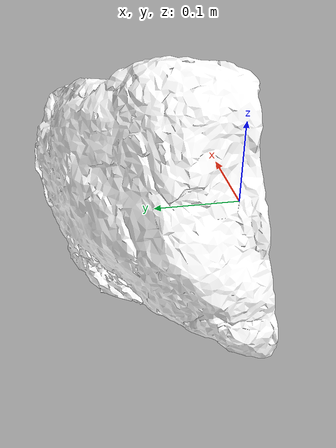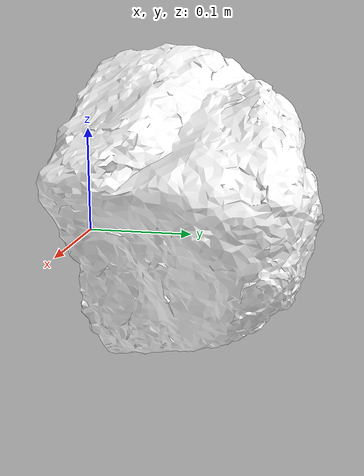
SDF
<?xml version="1.0" ?>
<sdf version="1.9">
  <model name="rock_3">
    <static>true</static>
    <link name="rock_link">
      <!-- Visual -->
      <visual name="visual">
        <geometry>
          <mesh>
            <uri>model://rock_3/meshes/rock_3.obj</uri>
          </mesh>
        </geometry>
        <material>
          <ambient>1 1 1 1</ambient>
          <diffuse>1 1 1 1</diffuse>
          <pbr>
            <metal>
              <albedo_map>model://rock_3/meshes/rock_3_diffuse.jpg</albedo_map>
            </metal>
          </pbr>
        </material>
      </visual>
      <!-- Collision -->
      <collision name="collision">
        <geometry>
          <mesh>
            <uri>model://rock_3/meshes/rock_3.obj</uri>
          </mesh>
        </geometry>
      </collision>
    </link>
  </model>
</sdf>
